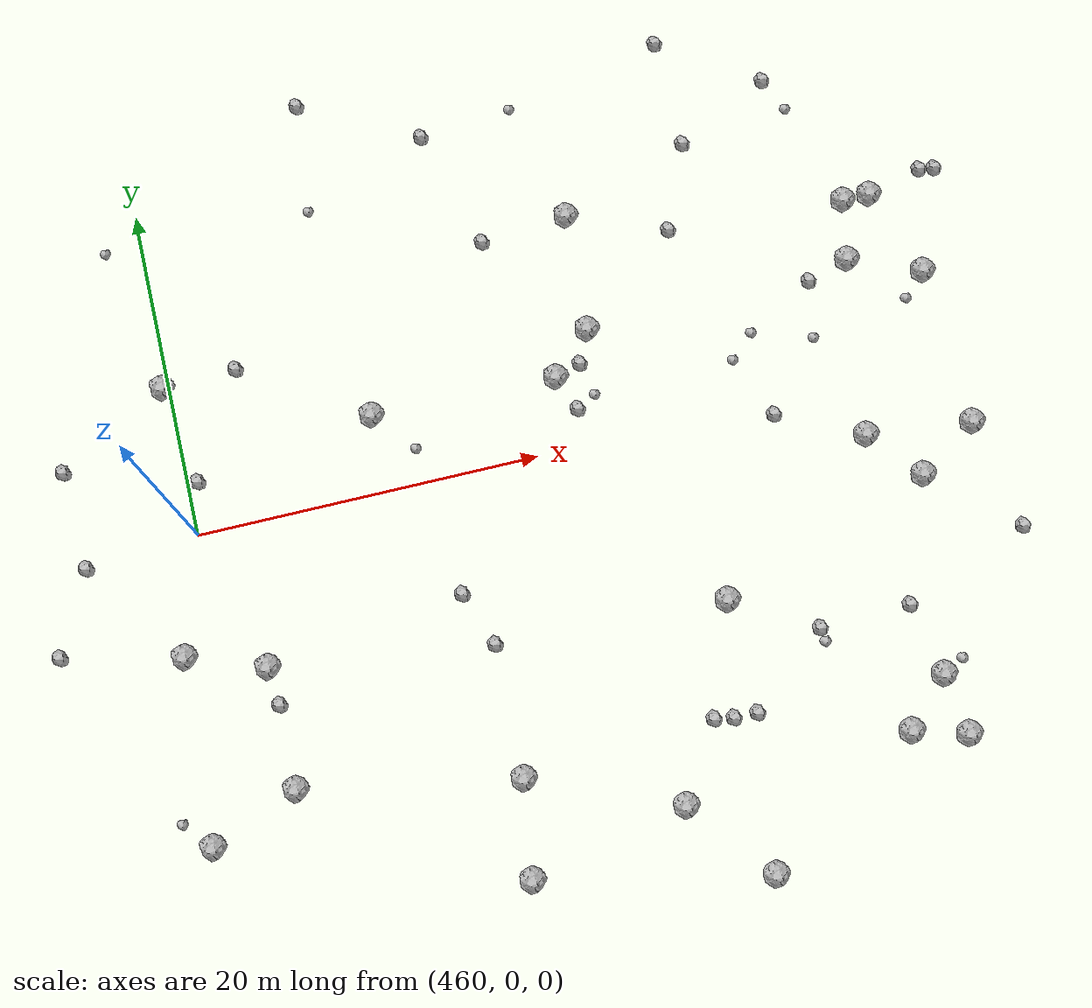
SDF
<sdf version="1.6">
 <world name="default">
  <include><uri>model://sun</uri></include>
  <model name="rock1_12_3">
   <include><uri>model://rock1</uri><pose>488.51026911427454 -10.690837637473663 0.5 0 0 0</pose></include>
  </model>
  <model name="rock1_12_4">
   <include><uri>model://rock1</uri><pose>498.81471642651104 -3.2051603176450314 0.5 0 0 0</pose></include>
  </model>
  <model name="rock1_12_5">
   <include><uri>model://rock1</uri><pose>475.0244525306727 -17.702993863309892 0.5 0 0 0</pose></include>
  </model>
  <model name="rock1_12_6">
   <include><uri>model://rock1</uri><pose>462.6984049350633 -15.358303383581857 0.5 0 0 0</pose></include>
  </model>
  <model name="rock1_12_7">
   <include><uri>model://rock1</uri><pose>482.16589755796684 4.348027776064285 0.5 0 0 0</pose></include>
  </model>
  <model name="rock1_12_8">
   <include><uri>model://rock1</uri><pose>504.86786566640575 5.70778760926936 0.5 0 0 0</pose></include>
  </model>
  <model name="rock1_12_9">
   <include><uri>model://rock1</uri><pose>485.108355233909 13.996634536918705 0.5 0 0 0</pose></include>
  </model>
  <model name="rock1_12_10">
   <include><uri>model://rock1</uri><pose>471.22047329442546 4.58606227852021 0.5 0 0 0</pose></include>
  </model>
  <model name="rock1_12_11">
   <include><uri>model://rock1</uri><pose>496.5503253382733 -20.16662093493086 0.5 0 0 0</pose></include>
  </model>
  <model name="rock1_12_12">
   <include><uri>model://rock1</uri><pose>499.597751164137 -21.049711512078762 0.5 0 0 0</pose></include>
  </model>
  <model name="rock1_12_13">
   <include><uri>model://rock1</uri><pose>501.35765347170536 -6.245630761597646 0.5 0 0 0</pose></include>
  </model>
  <model name="rock1_12_14">
   <include><uri>model://rock1</uri><pose>500.6970691285748 7.43831534938203 0.5 0 0 0</pose></include>
  </model>
  <model name="rock1_12_15">
   <include><uri>model://rock1</uri><pose>474.2329463364207 -23.11399042437881 0.5 0 0 0</pose></include>
  </model>
  <model name="rock1_12_16">
   <include><uri>model://rock1</uri><pose>499.19912997633173 -17.544897584045597 0.5 0 0 0</pose></include>
  </model>
  <model name="rock1_12_17">
   <include><uri>model://rock1</uri><pose>503.1158764238604 11.120471970163557 0.5 0 0 0</pose></include>
  </model>
  <model name="rock1_12_18">
   <include><uri>model://rock1</uri><pose>501.5006265388421 11.116549433390887 0.5 0 0 0</pose></include>
  </model>
  <model name="rock1_12_19">
   <include><uri>model://rock1</uri><pose>484.6341153129515 6.783493661770642 0.5 0 0 0</pose></include>
  </model>
  <model name="rock1_12_20">
   <include><uri>model://rock1</uri><pose>505.00764817503295 -3.878248804173655 0.5 0 0 0</pose></include>
  </model>
  <model name="rock1_12_21">
   <include><uri>model://rock1</uri><pose>457.70172916042037 -17.37311322816135 0.5 0 0 0</pose></include>
  </model>
  <model name="rock1_12_22">
   <include><uri>model://rock1</uri><pose>462.512168131857 -8.38739880065144 0.5 0 0 0</pose></include>
  </model>
  <model name="rock1_12_23">
   <include><uri>model://rock1</uri><pose>483.35445027984974 -21.203171705728913 0.5 0 0 0</pose></include>
  </model>
  <model name="rock1_12_24">
   <include><uri>model://rock1</uri><pose>458.087427754296 -6.775188867354455 0.5 0 0 0</pose></include>
  </model>
  <model name="rock1_12_25">
   <include><uri>model://rock1</uri><pose>459.70501571900155 9.016651396846044 0.5 0 0 0</pose></include>
  </model>
  <model name="rock1_12_26">
   <include><uri>model://rock1</uri><pose>487.1816519666713 -25.8951996084836 0.5 0 0 0</pose></include>
  </model>
  <model name="rock2_12_0">
   <include><uri>model://rock2</uri><pose>460.6173190557929 3.0622291683435066 0.3 0 0 0</pose></include>
  </model>
  <model name="rock2_12_1">
   <include><uri>model://rock2</uri><pose>464.0216613927485 9.222907244950079 0.3 0 0 0</pose></include>
  </model>
  <model name="rock2_12_2">
   <include><uri>model://rock2</uri><pose>493.1711514623957 -13.44123556441538 0.3 0 0 0</pose></include>
  </model>
  <model name="rock2_12_3">
   <include><uri>model://rock2</uri><pose>506.05650849254164 -10.451358618576585 0.3 0 0 0</pose></include>
  </model>
  <model name="rock2_12_4">
   <include><uri>model://rock2</uri><pose>486.0382654775029 -16.97582998601529 0.3 0 0 0</pose></include>
  </model>
  <model name="rock2_12_5">
   <include><uri>model://rock2</uri><pose>473.9792110896737 -6.861621109427894 0.3 0 0 0</pose></include>
  </model>
  <model name="rock2_12_6">
   <include><uri>model://rock2</uri><pose>462.6900433591616 -10.581746767192211 0.3 0 0 0</pose></include>
  </model>
  <model name="rock2_12_7">
   <include><uri>model://rock2</uri><pose>482.9300397067383 2.2246820235900273 0.3 0 0 0</pose></include>
  </model>
  <model name="rock2_12_8">
   <include><uri>model://rock2</uri><pose>498.12968130796395 6.692870765882844 0.3 0 0 0</pose></include>
  </model>
  <model name="rock2_12_9">
   <include><uri>model://rock2</uri><pose>498.8466172009971 19.88906222160103 0.3 0 0 0</pose></include>
  </model>
  <model name="rock2_12_10">
   <include><uri>model://rock2</uri><pose>498.47593460394586 -13.334525188205394 0.3 0 0 0</pose></include>
  </model>
  <model name="rock2_12_11">
   <include><uri>model://rock2</uri><pose>488.48684015803235 -17.212983561446304 0.3 0 0 0</pose></include>
  </model>
  <model name="rock2_12_12">
   <include><uri>model://rock2</uri><pose>507.4246464805424 11.906620571086023 0.3 0 0 0</pose></include>
  </model>
  <model name="rock2_12_13">
   <include><uri>model://rock2</uri><pose>493.95405710731745 -0.7728323102704593 0.3 0 0 0</pose></include>
  </model>
  <model name="rock2_12_14">
   <include><uri>model://rock2</uri><pose>479.8316469928223 13.599919254478074 0.3 0 0 0</pose></include>
  </model>
  <model name="rock2_12_15">
   <include><uri>model://rock2</uri><pose>487.141359404749 -17.1778548995373 0.3 0 0 0</pose></include>
  </model>
  <model name="rock2_12_16">
   <include><uri>model://rock2</uri><pose>506.5226313187862 12.047070564790133 0.3 0 0 0</pose></include>
  </model>
  <model name="rock2_12_17">
   <include><uri>model://rock2</uri><pose>453.1653078649103 5.381546863853096 0.3 0 0 0</pose></include>
  </model>
  <model name="rock2_12_18">
   <include><uri>model://rock2</uri><pose>483.69911856812496 4.873584407003143 0.3 0 0 0</pose></include>
  </model>
  <model name="rock2_12_19">
   <include><uri>model://rock2</uri><pose>477.74823720149107 21.077667547908682 0.3 0 0 0</pose></include>
  </model>
  <model name="rock2_12_20">
   <include><uri>model://rock2</uri><pose>451.216138244248 -5.1747390433468645 0.3 0 0 0</pose></include>
  </model>
  <model name="rock2_12_21">
   <include><uri>model://rock2</uri><pose>470.8072574787307 24.816045297129875 0.3 0 0 0</pose></include>
  </model>
  <model name="rock2_12_22">
   <include><uri>model://rock2</uri><pose>493.05271505637194 16.973512708977495 0.3 0 0 0</pose></include>
  </model>
  <model name="rock2_12_23">
   <include><uri>model://rock2</uri><pose>453.51317582616576 -0.4750598974929119 0.3 0 0 0</pose></include>
  </model>
  <model name="rock2_12_24">
   <include><uri>model://rock2</uri><pose>493.06704511296766 23.804658920040126 0.3 0 0 0</pose></include>
  </model>
  <model name="rock2_12_25">
   <include><uri>model://rock2</uri><pose>490.830373551425 11.76530453602124 0.3 0 0 0</pose></include>
  </model>
  <model name="rock2_12_26">
   <include><uri>model://rock2</uri><pose>475.14571857149025 -10.080852590148965 0.3 0 0 0</pose></include>
  </model>
  <model name="rock3_12_0">
   <include><uri>model://rock3</uri><pose>493.97026727074746 4.3635485452168155 0.2 0 0 0</pose></include>
  </model>
  <model name="rock3_12_1">
   <include><uri>model://rock3</uri><pose>483.35902598218485 21.60425133410687 0.2 0 0 0</pose></include>
  </model>
  <model name="rock3_12_2">
   <include><uri>model://rock3</uri><pose>493.25684893956037 -14.259992650724513 0.2 0 0 0</pose></include>
  </model>
  <model name="rock3_12_3">
   <include><uri>model://rock3</uri><pose>500.48267319580816 -16.94313337808142 0.2 0 0 0</pose></include>
  </model>
  <model name="rock3_12_4">
   <include><uri>model://rock3</uri><pose>457.82318043027504 18.0548890762651 0.2 0 0 0</pose></include>
  </model>
  <model name="rock3_12_5">
   <include><uri>model://rock3</uri><pose>456.2069078621692 -15.800995749065606 0.2 0 0 0</pose></include>
  </model>
  <model name="rock3_12_6">
   <include><uri>model://rock3</uri><pose>470.1305283618206 17.913946238066856 0.2 0 0 0</pose></include>
  </model>
  <model name="rock3_12_7">
   <include><uri>model://rock3</uri><pose>473.2550439073399 2.0640892879974615 0.2 0 0 0</pose></include>
  </model>
  <model name="rock3_12_8">
   <include><uri>model://rock3</uri><pose>499.73234966322025 17.725235467023758 0.2 0 0 0</pose></include>
  </model>
  <model name="rock3_12_9">
   <include><uri>model://rock3</uri><pose>503.4603450501013 4.316174774709594 0.2 0 0 0</pose></include>
  </model>
  <model name="rock3_12_10">
   <include><uri>model://rock3</uri><pose>492.49146935404264 2.9844881348106753 0.2 0 0 0</pose></include>
  </model>
  <model name="rock3_12_11">
   <include><uri>model://rock3</uri><pose>497.4656846896072 3.2171614704739326 0.2 0 0 0</pose></include>
  </model>
  <model name="rock3_12_12">
   <include><uri>model://rock3</uri><pose>484.10574588883463 2.836804711163147 0.2 0 0 0</pose></include>
  </model>
 </world>
</sdf>
